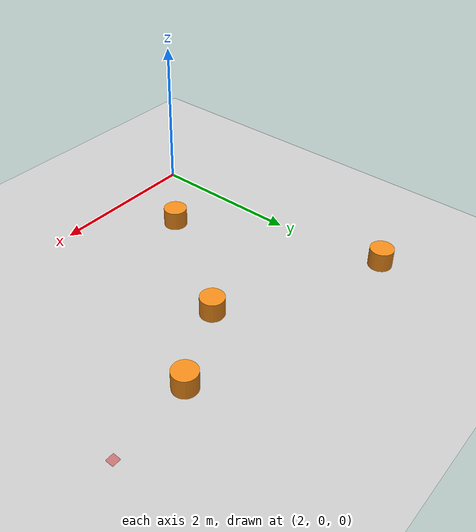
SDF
<?xml version="1.0"?>
<sdf version="1.4">
  <world name="default">

    <include>
      <uri>model://sun</uri>
    </include>
    <include>
      <uri>model://ground_plane</uri>
    </include>

  <model name="green_ball">
      <static>False</static>

  <link name="cylinder">
    <inertial>
      <mass>15</mass>
      <origin xyz="0 0 0" rpy=" 0 0 0"/>
      <inertia>
        <ixx>1.0</ixx> <ixy>0</ixy> <ixz>0</ixz>
        <iyy>1.0</iyy> <iyz>0</iyz>
        <izz>1.0</izz>
      </inertia>
    </inertial>
    <pose>3 1 0.25 0 0 0</pose>
    <collision name="collision">
    <geometry>
      <cylinder>
        <length>0.25</length>
        <radius>0.15</radius>
      </cylinder>
    </geometry>
    <surface>
      <friction>
        <ode>
          <mu>1</mu>
          <mu2>1</mu2>
        </ode>
      </friction>
    </surface>
  </collision>
  <visual name="visual">
    <geometry>
      <cylinder>
        <length>0.25</length>
        <radius>0.15</radius>
      </cylinder>
    </geometry>
    <material>
      <script>
        <uri>file://media/materials/scripts/gazebo.material</uri>
        <name>Gazebo/Orange</name>
      </script>
    </material>
  </visual>
</link>
</model>

<model name="green_ball2">
  <static>False</static>

<link name="cylinder2">
<inertial>
  <mass>15</mass>
  <origin xyz="0 0 0" rpy=" 0 0 0"/>
  <inertia>
    <ixx>1.0</ixx> <ixy>0</ixy> <ixz>0</ixz>
    <iyy>1.0</iyy> <iyz>0</iyz>
    <izz>1.0</izz>
  </inertia>
</inertial>
<pose>2 3.5 0.25 0 0 0</pose>
<collision name="collision">
<geometry>
  <cylinder>
    <length>0.25</length>
    <radius>0.15</radius>
  </cylinder>
</geometry>
<surface>
  <friction>
    <ode>
      <mu>1</mu>
      <mu2>1</mu2>
    </ode>
  </friction>
</surface>
</collision>
<visual name="visual">
<geometry>
  <cylinder>
    <length>0.25</length>
    <radius>0.15</radius>
  </cylinder>
</geometry>
<material>
  <script>
    <uri>file://media/materials/scripts/gazebo.material</uri>
    <name>Gazebo/Orange</name>
  </script>
</material>
</visual>
</link>
</model>

<model name="green_ball3">
  <static>False</static>

<link name="cylinder3">
<inertial>
  <mass>15</mass>
  <origin xyz="0 0 0" rpy=" 0 0 0"/>
  <inertia>
    <ixx>1.0</ixx> <ixy>0</ixy> <ixz>0</ixz>
    <iyy>1.0</iyy> <iyz>0</iyz>
    <izz>1.0</izz>
  </inertia>
</inertial>
<pose>4 2.5 0.25 0 0 0</pose>
<collision name="collision">
<geometry>
  <cylinder>
    <length>0.25</length>
    <radius>0.15</radius>
  </cylinder>
</geometry>
<surface>
  <friction>
    <ode>
      <mu>1</mu>
      <mu2>1</mu2>
    </ode>
  </friction>
</surface>
</collision>
<visual name="visual">
<geometry>
  <cylinder>
    <length>0.25</length>
    <radius>0.15</radius>
  </cylinder>
</geometry>
<material>
  <script>
    <uri>file://media/materials/scripts/gazebo.material</uri>
    <name>Gazebo/Orange</name>
  </script>
</material>
</visual>
</link>
</model>

<model name="green_ball4">
  <static>False</static>

<link name="cylinder4">
<inertial>
  <mass>15</mass>
  <origin xyz="0 0 0" rpy=" 0 0 0"/>
  <inertia>
    <ixx>1.0</ixx> <ixy>0</ixy> <ixz>0</ixz>
    <iyy>1.0</iyy> <iyz>0</iyz>
    <izz>1.0</izz>
  </inertia>
</inertial>
<pose>5 3 0.25 0 0 0</pose>
<collision name="collision">
<geometry>
  <cylinder>
    <length>0.25</length>
    <radius>0.15</radius>
  </cylinder>
</geometry>
<surface>
  <friction>
    <ode>
      <mu>1</mu>
      <mu2>1</mu2>
    </ode>
  </friction>
</surface>
</collision>
<visual name="visual">
<geometry>
  <cylinder>
    <length>0.25</length>
    <radius>0.15</radius>
  </cylinder>
</geometry>
<material>
  <script>
    <uri>file://media/materials/scripts/gazebo.material</uri>
    <name>Gazebo/Orange</name>
  </script>
</material>
</visual>
</link>
</model>

<model name="cubo">
  <static>True</static>
<link name="cube_target">

  <pose>6 3 0.005 0 0 0</pose>
  <visual name="visual">
    <geometry>
      <box>
        <size>0.1 0.1 0.01</size>
      </box>
    </geometry>
    <material>
      <script>
        <uri>file://media/materials/scripts/gazebo.material</uri>
        <name>Gazebo/RedTransparent</name>
      </script>
    </material>
  </visual>
</link>
</model>

    <physics type="ode">
      <real_time_update_rate>1000.0</real_time_update_rate>
      <max_step_size>0.001</max_step_size>
      <real_time_factor>1</real_time_factor>
      <ode>
        <solver>
          <type>quick</type>
          <iters>150</iters>
          <precon_iters>0</precon_iters>
          <sor>1.400000</sor>
          <use_dynamic_moi_rescaling>1</use_dynamic_moi_rescaling>
        </solver>
        <constraints>
          <cfm>0.00001</cfm>
          <erp>0.2</erp>
          <contact_max_correcting_vel>2000.000000</contact_max_correcting_vel>
          <contact_surface_layer>0.01000</contact_surface_layer>
        </constraints>
      </ode>
    </physics>
  </world>
</sdf>
